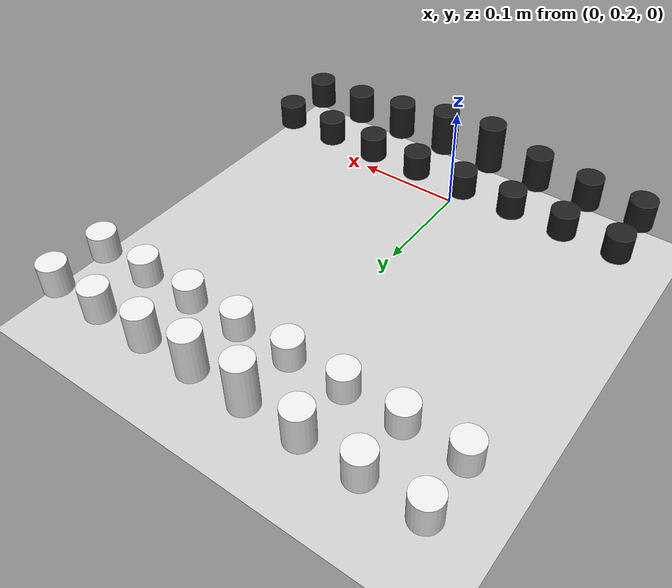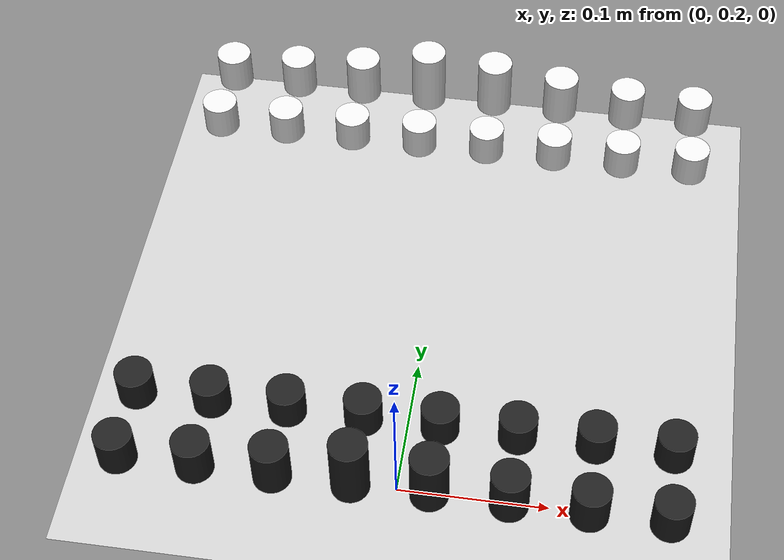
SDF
<sdf version="1.7">
 <world name="chessRoom">
  <include><uri>model://ground_plane</uri></include>
  <include><uri>model://sun</uri></include>
  <include><uri>model://pawnBlack</uri><name>blackPawn1</name><pose>0.175 0.225 0.0515 0 0 0</pose></include>
  <include><uri>model://pawnBlack</uri><name>blackPawn2</name><pose>0.125 0.225 0.0515 0 0 0</pose></include>
  <include><uri>model://pawnBlack</uri><name>blackPawn3</name><pose>0.075 0.225 0.0515 0 0 0</pose></include>
  <include><uri>model://pawnBlack</uri><name>blackPawn4</name><pose>0.025 0.225 0.0515 0 0 0</pose></include>
  <include><uri>model://pawnBlack</uri><name>blackPawn5</name><pose>-0.025 0.225 0.0515 0 0 0</pose></include>
  <include><uri>model://pawnBlack</uri><name>blackPawn6</name><pose>-0.075 0.225 0.0515 0 0 0</pose></include>
  <include><uri>model://pawnBlack</uri><name>blackPawn7</name><pose>-0.125 0.225 0.0515 0 0 0</pose></include>
  <include><uri>model://pawnBlack</uri><name>blackPawn8</name><pose>-0.175 0.225 0.0515 0 0 0</pose></include>
  <include><uri>model://rookBlack</uri><name>blackRook1</name><pose>0.175 0.175 0.05275 0 0 0</pose></include>
  <include><uri>model://rookBlack</uri><name>blackRook2</name><pose>-0.175 0.175 0.05275 0 0 0</pose></include>
  <include><uri>model://knightBlack</uri><name>blackKnight1</name><pose>0.125 0.175 0.054 0 0 0</pose></include>
  <include>
   <uri>model://knightBlack</uri>
   <name>blackKnight2</name>
   <pose>-0.125 0.175 0.054 0 0 0</pose>
  </include>
  <include>
   <uri>model://bishopBlack</uri>
   <name>blackBishop1</name>
   <pose>0.075 0.175 0.0565 0 0 0</pose>
  </include>
  <include>
   <uri>model://bishopBlack</uri>
   <name>blackBishop2</name>
   <pose>-0.075 0.175 0.0565 0 0 0</pose>
  </include>
  <include><uri>model://queenBlack</uri><name>blackQueen</name><pose>0.025 0.175 0.06109 0 0 0</pose></include>
  <include><uri>model://kingBlack</uri><name>blackKing</name><pose>-0.025 0.175 0.0628 0 0 0</pose></include>
  <include><uri>model://pawnWhite</uri><name>whitePawn1</name><pose>0.175 0.475 0.0515 0 0 0</pose></include>
  <include><uri>model://pawnWhite</uri><name>whitePawn2</name><pose>0.125 0.475 0.0515 0 0 0</pose></include>
  <include><uri>model://pawnWhite</uri><name>whitePawn3</name><pose>0.075 0.475 0.0515 0 0 0</pose></include>
  <include><uri>model://pawnWhite</uri><name>whitePawn4</name><pose>0.025 0.475 0.0515 0 0 0</pose></include>
  <include><uri>model://pawnWhite</uri><name>whitePawn5</name><pose>-0.025 0.475 0.0515 0 0 0</pose></include>
  <include><uri>model://pawnWhite</uri><name>whitePawn6</name><pose>-0.075 0.475 0.0515 0 0 0</pose></include>
  <include><uri>model://pawnWhite</uri><name>whitePawn7</name><pose>-0.125 0.475 0.0515 0 0 0</pose></include>
  <include><uri>model://pawnWhite</uri><name>whitePawn8</name><pose>-0.175 0.475 0.0515 0 0 0</pose></include>
  <include><uri>model://rookWhite</uri><name>whiteRook1</name><pose>0.175 0.525 0.05275 0 0 0</pose></include>
  <include><uri>model://rookWhite</uri><name>whiteRook2</name><pose>-0.175 0.525 0.05275 0 0 0</pose></include>
  <include><uri>model://knightWhite</uri><name>whiteKnight1</name><pose>0.125 0.525 0.054 0 0 0</pose></include>
  <include>
   <uri>model://knightWhite</uri>
   <name>whiteKnight2</name>
   <pose>-0.125 0.525 0.054 0 0 0</pose>
  </include>
  <include>
   <uri>model://bishopWhite</uri>
   <name>whiteBishop1</name>
   <pose>0.075 0.525 0.0565 0 0 0</pose>
  </include>
  <include>
   <uri>model://bishopWhite</uri>
   <name>whiteBishop2</name>
   <pose>-0.075 0.525 0.0565 0 0 0</pose>
  </include>
  <include><uri>model://queenWhite</uri><name>whiteQueen</name><pose>0.025 0.525 0.06109 0 0 0</pose></include>
  <include><uri>model://kingWhite</uri><name>whiteKing</name><pose>-0.025 0.525 0.0628 0 0 0</pose></include>
 </world>
</sdf>

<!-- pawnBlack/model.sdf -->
<sdf version='1.6'>
  <model name='PawnBlack'>
    <link name='pawnBlack_link'>
      <pose frame=''>0 0 0 0 0 0</pose>
      <inertial>
        <mass>0.001</mass>
        <inertia>
          <ixx>3.91e-06</ixx>
          <ixy>0</ixy>
          <ixz>0</ixz>
          <iyy>3.91e-06</iyy>
          <iyz>0</iyz>
          <izz>3.91e-06</izz>
        </inertia>
        <pose frame=''>0 0 0 0 -0 0</pose>
      </inertial>
      <gravity>1</gravity>
      <self_collide>0</self_collide>
      <kinematic>0</kinematic>
      <enable_wind>0</enable_wind>
      <visual name='visual'>
        <pose frame=''>0 0 0 0 -0 0</pose>
        <geometry>
          <cylinder>
            <radius>0.0125</radius>
            <length>0.025</length>
          </cylinder>
        </geometry>
        <material>
          <lighting>1</lighting>
          <script>
            <uri>file://media/materials/scripts/gazebo.material</uri>
            <name>Gazebo/Black</name>
          </script>
          <shader type='pixel'>
            <normal_map>__default__</normal_map>
          </shader>
          <ambient>0 0 0 1</ambient>
          <diffuse>0 0 0 1</diffuse>
          <specular>0.1 0.1 0.1 1</specular>
          <emissive>0 0 0 1</emissive>
        </material>
        <cast_shadows>1</cast_shadows>
        <transparency>0</transparency>
      </visual>
      <collision name='collision'>
        <laser_retro>0</laser_retro>
        <max_contacts>10</max_contacts>
        <pose frame=''>0 0 0 0 -0 0</pose>
        <geometry>
          <cylinder>
            <radius>0.0125</radius>
            <length>0.025</length>
          </cylinder>
        </geometry>
        <surface>
          <friction>
            <ode>
              <mu>1</mu>
              <mu2>1</mu2>
              <fdir1>0 0 0</fdir1>
              <slip1>0</slip1>
              <slip2>0</slip2>
            </ode>
            <torsional>
              <coefficient>1</coefficient>
              <patch_radius>0</patch_radius>
              <surface_radius>0</surface_radius>
              <use_patch_radius>1</use_patch_radius>
              <ode>
                <slip>0</slip>
              </ode>
            </torsional>
          </friction>
          <bounce>
            <restitution_coefficient>0</restitution_coefficient>
            <threshold>1e+06</threshold>
          </bounce>
          <contact>
            <collide_without_contact>0</collide_without_contact>
            <collide_without_contact_bitmask>1</collide_without_contact_bitmask>
            <collide_bitmask>1</collide_bitmask>
            <ode>
              <soft_cfm>0</soft_cfm>
              <soft_erp>0.2</soft_erp>
              <kp>1e+13</kp>
              <kd>1</kd>
              <max_vel>0.01</max_vel>
              <min_depth>0</min_depth>
            </ode>
            <bullet>
              <split_impulse>1</split_impulse>
              <split_impulse_penetration_threshold>-0.01</split_impulse_penetration_threshold>
              <soft_cfm>0</soft_cfm>
              <soft_erp>0.2</soft_erp>
              <kp>1e+13</kp>
              <kd>1</kd>
            </bullet>
          </contact>
        </surface>
      </collision>
    </link>
    <static>0</static>
    <allow_auto_disable>1</allow_auto_disable>
  </model>
</sdf>

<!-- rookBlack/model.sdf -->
<sdf version='1.6'>
  <model name='RookBlack'>
    <link name='rookBlack_link'>
      <pose frame=''>0 0 0 0 0 0</pose>
      <inertial>
        <mass>0.001</mass>
        <inertia>
          <ixx>3.91e-06</ixx>
          <ixy>0</ixy>
          <ixz>0</ixz>
          <iyy>3.91e-06</iyy>
          <iyz>0</iyz>
          <izz>3.91e-06</izz>
        </inertia>
        <pose frame=''>0 0 0 0 -0 0</pose>
      </inertial>
      <gravity>1</gravity>
      <self_collide>0</self_collide>
      <kinematic>0</kinematic>
      <enable_wind>0</enable_wind>
      <visual name='visual'>
        <pose frame=''>0 0 0 0 -0 0</pose>
        <geometry>
          <cylinder>
            <radius>0.0125</radius>
            <length>0.0275</length>
          </cylinder>
        </geometry>
        <material>
          <lighting>1</lighting>
          <script>
            <uri>file://media/materials/scripts/gazebo.material</uri>
            <name>Gazebo/Black</name>
          </script>
          <shader type='pixel'>
            <normal_map>__default__</normal_map>
          </shader>
          <ambient>0 0 0 1</ambient>
          <diffuse>0 0 0 1</diffuse>
          <specular>0.1 0.1 0.1 1</specular>
          <emissive>0 0 0 1</emissive>
        </material>
        <cast_shadows>1</cast_shadows>
        <transparency>0</transparency>
      </visual>
      <collision name='collision'>
        <laser_retro>0</laser_retro>
        <max_contacts>10</max_contacts>
        <pose frame=''>0 0 0 0 -0 0</pose>
        <geometry>
          <cylinder>
            <radius>0.0125</radius>
            <length>0.0275</length>
          </cylinder>
        </geometry>
        <surface>
          <friction>
            <ode>
              <mu>1</mu>
              <mu2>1</mu2>
              <fdir1>0 0 0</fdir1>
              <slip1>0</slip1>
              <slip2>0</slip2>
            </ode>
            <torsional>
              <coefficient>1</coefficient>
              <patch_radius>0</patch_radius>
              <surface_radius>0</surface_radius>
              <use_patch_radius>1</use_patch_radius>
              <ode>
                <slip>0</slip>
              </ode>
            </torsional>
          </friction>
          <bounce>
            <restitution_coefficient>0</restitution_coefficient>
            <threshold>1e+06</threshold>
          </bounce>
          <contact>
            <collide_without_contact>0</collide_without_contact>
            <collide_without_contact_bitmask>1</collide_without_contact_bitmask>
            <collide_bitmask>1</collide_bitmask>
            <ode>
              <soft_cfm>0</soft_cfm>
              <soft_erp>0.2</soft_erp>
              <kp>1e+13</kp>
              <kd>1</kd>
              <max_vel>0.01</max_vel>
              <min_depth>0</min_depth>
            </ode>
            <bullet>
              <split_impulse>1</split_impulse>
              <split_impulse_penetration_threshold>-0.01</split_impulse_penetration_threshold>
              <soft_cfm>0</soft_cfm>
              <soft_erp>0.2</soft_erp>
              <kp>1e+13</kp>
              <kd>1</kd>
            </bullet>
          </contact>
        </surface>
      </collision>
    </link>
    <static>0</static>
    <allow_auto_disable>1</allow_auto_disable>
  </model>
</sdf>

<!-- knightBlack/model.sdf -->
<sdf version='1.6'>
  <model name='KnightBlack'>
    <link name='knightBlack_link'>
      <pose frame=''>0 0 0 0 0 0</pose>
      <inertial>
        <mass>0.001</mass>
        <inertia>
          <ixx>3.91e-06</ixx>
          <ixy>0</ixy>
          <ixz>0</ixz>
          <iyy>3.91e-06</iyy>
          <iyz>0</iyz>
          <izz>3.91e-06</izz>
        </inertia>
        <pose frame=''>0 0 0 0 -0 0</pose>
      </inertial>
      <gravity>1</gravity>
      <self_collide>0</self_collide>
      <kinematic>0</kinematic>
      <enable_wind>0</enable_wind>
      <visual name='visual'>
        <pose frame=''>0 0 0 0 -0 0</pose>
        <geometry>
          <cylinder>
            <radius>0.0125</radius>
            <length>0.03</length>
          </cylinder>
        </geometry>
        <material>
          <lighting>1</lighting>
          <script>
            <uri>file://media/materials/scripts/gazebo.material</uri>
            <name>Gazebo/Black</name>
          </script>
          <shader type='pixel'>
            <normal_map>__default__</normal_map>
          </shader>
          <ambient>0 0 0 1</ambient>
          <diffuse>0 0 0 1</diffuse>
          <specular>0.1 0.1 0.1 1</specular>
          <emissive>0 0 0 1</emissive>
        </material>
        <cast_shadows>1</cast_shadows>
        <transparency>0</transparency>
      </visual>
      <collision name='collision'>
        <laser_retro>0</laser_retro>
        <max_contacts>10</max_contacts>
        <pose frame=''>0 0 0 0 -0 0</pose>
        <geometry>
          <cylinder>
            <radius>0.0125</radius>
            <length>0.03</length>
          </cylinder>
        </geometry>
        <surface>
          <friction>
            <ode>
              <mu>1</mu>
              <mu2>1</mu2>
              <fdir1>0 0 0</fdir1>
              <slip1>0</slip1>
              <slip2>0</slip2>
            </ode>
            <torsional>
              <coefficient>1</coefficient>
              <patch_radius>0</patch_radius>
              <surface_radius>0</surface_radius>
              <use_patch_radius>1</use_patch_radius>
              <ode>
                <slip>0</slip>
              </ode>
            </torsional>
          </friction>
          <bounce>
            <restitution_coefficient>0</restitution_coefficient>
            <threshold>1e+06</threshold>
          </bounce>
          <contact>
            <collide_without_contact>0</collide_without_contact>
            <collide_without_contact_bitmask>1</collide_without_contact_bitmask>
            <collide_bitmask>1</collide_bitmask>
            <ode>
              <soft_cfm>0</soft_cfm>
              <soft_erp>0.2</soft_erp>
              <kp>1e+13</kp>
              <kd>1</kd>
              <max_vel>0.01</max_vel>
              <min_depth>0</min_depth>
            </ode>
            <bullet>
              <split_impulse>1</split_impulse>
              <split_impulse_penetration_threshold>-0.01</split_impulse_penetration_threshold>
              <soft_cfm>0</soft_cfm>
              <soft_erp>0.2</soft_erp>
              <kp>1e+13</kp>
              <kd>1</kd>
            </bullet>
          </contact>
        </surface>
      </collision>
    </link>
    <static>0</static>
    <allow_auto_disable>1</allow_auto_disable>
  </model>
</sdf>

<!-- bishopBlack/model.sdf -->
<sdf version='1.6'>
  <model name='BishopBlack'>
    <link name='bishopBlack_link'>
      <pose frame=''>0 0 0 0 0 0</pose>
      <inertial>
        <mass>0.001</mass>
        <inertia>
          <ixx>3.91e-06</ixx>
          <ixy>0</ixy>
          <ixz>0</ixz>
          <iyy>3.91e-06</iyy>
          <iyz>0</iyz>
          <izz>3.91e-06</izz>
        </inertia>
        <pose frame=''>0 0 0 0 -0 0</pose>
      </inertial>
      <gravity>1</gravity>
      <self_collide>0</self_collide>
      <kinematic>0</kinematic>
      <enable_wind>0</enable_wind>
      <visual name='visual'>
        <pose frame=''>0 0 0 0 -0 0</pose>
        <geometry>
          <cylinder>
            <radius>0.0125</radius>
            <length>0.035</length>
          </cylinder>
        </geometry>
        <material>
          <lighting>1</lighting>
          <script>
            <uri>file://media/materials/scripts/gazebo.material</uri>
            <name>Gazebo/Black</name>
          </script>
          <shader type='pixel'>
            <normal_map>__default__</normal_map>
          </shader>
          <ambient>0 0 0 1</ambient>
          <diffuse>0 0 0 1</diffuse>
          <specular>0.1 0.1 0.1 1</specular>
          <emissive>0 0 0 1</emissive>
        </material>
        <cast_shadows>1</cast_shadows>
        <transparency>0</transparency>
      </visual>
      <collision name='collision'>
        <laser_retro>0</laser_retro>
        <max_contacts>10</max_contacts>
        <pose frame=''>0 0 0 0 -0 0</pose>
        <geometry>
          <cylinder>
            <radius>0.0125</radius>
            <length>0.035</length>
          </cylinder>
        </geometry>
        <surface>
          <friction>
            <ode>
              <mu>1</mu>
              <mu2>1</mu2>
              <fdir1>0 0 0</fdir1>
              <slip1>0</slip1>
              <slip2>0</slip2>
            </ode>
            <torsional>
              <coefficient>1</coefficient>
              <patch_radius>0</patch_radius>
              <surface_radius>0</surface_radius>
              <use_patch_radius>1</use_patch_radius>
              <ode>
                <slip>0</slip>
              </ode>
            </torsional>
          </friction>
          <bounce>
            <restitution_coefficient>0</restitution_coefficient>
            <threshold>1e+06</threshold>
          </bounce>
          <contact>
            <collide_without_contact>0</collide_without_contact>
            <collide_without_contact_bitmask>1</collide_without_contact_bitmask>
            <collide_bitmask>1</collide_bitmask>
            <ode>
              <soft_cfm>0</soft_cfm>
              <soft_erp>0.2</soft_erp>
              <kp>1e+13</kp>
              <kd>1</kd>
              <max_vel>0.01</max_vel>
              <min_depth>0</min_depth>
            </ode>
            <bullet>
              <split_impulse>1</split_impulse>
              <split_impulse_penetration_threshold>-0.01</split_impulse_penetration_threshold>
              <soft_cfm>0</soft_cfm>
              <soft_erp>0.2</soft_erp>
              <kp>1e+13</kp>
              <kd>1</kd>
            </bullet>
          </contact>
        </surface>
      </collision>
    </link>
    <static>0</static>
    <allow_auto_disable>1</allow_auto_disable>
  </model>
</sdf>

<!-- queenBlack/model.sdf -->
<sdf version='1.6'>
  <model name='QueenBlack'>
    <link name='queenBlack_link'>
      <pose frame=''>0 0 0 0 0 0</pose>
      <inertial>
        <mass>0.001</mass>
        <inertia>
          <ixx>3.91e-06</ixx>
          <ixy>0</ixy>
          <ixz>0</ixz>
          <iyy>3.91e-06</iyy>
          <iyz>0</iyz>
          <izz>3.91e-06</izz>
        </inertia>
        <pose frame=''>0 0 0 0 -0 0</pose>
      </inertial>
      <gravity>1</gravity>
      <self_collide>0</self_collide>
      <kinematic>0</kinematic>
      <enable_wind>0</enable_wind>
      <visual name='visual'>
        <pose frame=''>0 0 0 0 -0 0</pose>
        <geometry>
          <cylinder>
            <radius>0.0125</radius>
            <length>0.0425</length>
          </cylinder>
        </geometry>
        <material>
          <lighting>1</lighting>
          <script>
            <uri>file://media/materials/scripts/gazebo.material</uri>
            <name>Gazebo/Black</name>
          </script>
          <shader type='pixel'>
            <normal_map>__default__</normal_map>
          </shader>
          <ambient>0 0 0 1</ambient>
          <diffuse>0 0 0 1</diffuse>
          <specular>0.1 0.1 0.1 1</specular>
          <emissive>0 0 0 1</emissive>
        </material>
        <cast_shadows>1</cast_shadows>
        <transparency>0</transparency>
      </visual>
      <collision name='collision'>
        <laser_retro>0</laser_retro>
        <max_contacts>10</max_contacts>
        <pose frame=''>0 0 0 0 -0 0</pose>
        <geometry>
          <cylinder>
            <radius>0.0125</radius>
            <length>0.0425</length>
          </cylinder>
        </geometry>
        <surface>
          <friction>
            <ode>
              <mu>1</mu>
              <mu2>1</mu2>
              <fdir1>0 0 0</fdir1>
              <slip1>0</slip1>
              <slip2>0</slip2>
            </ode>
            <torsional>
              <coefficient>1</coefficient>
              <patch_radius>0</patch_radius>
              <surface_radius>0</surface_radius>
              <use_patch_radius>1</use_patch_radius>
              <ode>
                <slip>0</slip>
              </ode>
            </torsional>
          </friction>
          <bounce>
            <restitution_coefficient>0</restitution_coefficient>
            <threshold>1e+06</threshold>
          </bounce>
          <contact>
            <collide_without_contact>0</collide_without_contact>
            <collide_without_contact_bitmask>1</collide_without_contact_bitmask>
            <collide_bitmask>1</collide_bitmask>
            <ode>
              <soft_cfm>0</soft_cfm>
              <soft_erp>0.2</soft_erp>
              <kp>1e+13</kp>
              <kd>1</kd>
              <max_vel>0.01</max_vel>
              <min_depth>0</min_depth>
            </ode>
            <bullet>
              <split_impulse>1</split_impulse>
              <split_impulse_penetration_threshold>-0.01</split_impulse_penetration_threshold>
              <soft_cfm>0</soft_cfm>
              <soft_erp>0.2</soft_erp>
              <kp>1e+13</kp>
              <kd>1</kd>
            </bullet>
          </contact>
        </surface>
      </collision>
    </link>
    <static>0</static>
    <allow_auto_disable>1</allow_auto_disable>
  </model>
</sdf>

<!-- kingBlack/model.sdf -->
<sdf version='1.6'>
  <model name='KingBlack'>
    <link name='kingBlack_link'>
      <pose frame=''>0 0 0 0 0 0</pose>
      <inertial>
        <mass>0.001</mass>
        <inertia>
          <ixx>3.91e-06</ixx>
          <ixy>0</ixy>
          <ixz>0</ixz>
          <iyy>3.91e-06</iyy>
          <iyz>0</iyz>
          <izz>3.91e-06</izz>
        </inertia>
        <pose frame=''>0 0 0 0 -0 0</pose>
      </inertial>
      <gravity>1</gravity>
      <self_collide>0</self_collide>
      <kinematic>0</kinematic>
      <enable_wind>0</enable_wind>
      <visual name='visual'>
        <pose frame=''>0 0 0 0 -0 0</pose>
        <geometry>
          <cylinder>
            <radius>0.0125</radius>
            <length>0.0475</length>
          </cylinder>
        </geometry>
        <material>
          <lighting>1</lighting>
          <script>
            <uri>file://media/materials/scripts/gazebo.material</uri>
            <name>Gazebo/Black</name>
          </script>
          <shader type='pixel'>
            <normal_map>__default__</normal_map>
          </shader>
          <ambient>0 0 0 1</ambient>
          <diffuse>0 0 0 1</diffuse>
          <specular>0.1 0.1 0.1 1</specular>
          <emissive>0 0 0 1</emissive>
        </material>
        <cast_shadows>1</cast_shadows>
        <transparency>0</transparency>
      </visual>
      <collision name='collision'>
        <laser_retro>0</laser_retro>
        <max_contacts>10</max_contacts>
        <pose frame=''>0 0 0 0 -0 0</pose>
        <geometry>
          <cylinder>
            <radius>0.0125</radius>
            <length>0.0475</length>
          </cylinder>
        </geometry>
        <surface>
          <friction>
            <ode>
              <mu>1</mu>
              <mu2>1</mu2>
              <fdir1>0 0 0</fdir1>
              <slip1>0</slip1>
              <slip2>0</slip2>
            </ode>
            <torsional>
              <coefficient>1</coefficient>
              <patch_radius>0</patch_radius>
              <surface_radius>0</surface_radius>
              <use_patch_radius>1</use_patch_radius>
              <ode>
                <slip>0</slip>
              </ode>
            </torsional>
          </friction>
          <bounce>
            <restitution_coefficient>0</restitution_coefficient>
            <threshold>1e+06</threshold>
          </bounce>
          <contact>
            <collide_without_contact>0</collide_without_contact>
            <collide_without_contact_bitmask>1</collide_without_contact_bitmask>
            <collide_bitmask>1</collide_bitmask>
            <ode>
              <soft_cfm>0</soft_cfm>
              <soft_erp>0.2</soft_erp>
              <kp>1e+13</kp>
              <kd>1</kd>
              <max_vel>0.01</max_vel>
              <min_depth>0</min_depth>
            </ode>
            <bullet>
              <split_impulse>1</split_impulse>
              <split_impulse_penetration_threshold>-0.01</split_impulse_penetration_threshold>
              <soft_cfm>0</soft_cfm>
              <soft_erp>0.2</soft_erp>
              <kp>1e+13</kp>
              <kd>1</kd>
            </bullet>
          </contact>
        </surface>
      </collision>
    </link>
    <static>0</static>
    <allow_auto_disable>1</allow_auto_disable>
  </model>
</sdf>

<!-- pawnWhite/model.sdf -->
<sdf version='1.7'>
  <model name='PawnWhite'>
    <link name='pawnWhite_link'>
      <inertial>
        <mass>0.001</mass>
        <inertia>
          <ixx>3.91e-06</ixx>
          <ixy>0</ixy>
          <ixz>0</ixz>
          <iyy>3.91e-06</iyy>
          <iyz>0</iyz>
          <izz>3.91e-06</izz>
        </inertia>
        <pose>0 0 0 0 -0 0</pose>
      </inertial>
      <pose>0 0 0 0 -0 0</pose>
      <gravity>1</gravity>
      <self_collide>0</self_collide>
      <kinematic>0</kinematic>
      <enable_wind>0</enable_wind>
      <visual name='visual'>
        <pose>0 0 0 0 -0 0</pose>
        <geometry>
          <cylinder>
            <radius>0.0125</radius>
            <length>0.025</length>
          </cylinder>
        </geometry>
        <material>
          <lighting>1</lighting>
          <script>
            <uri>file://media/materials/scripts/gazebo.material</uri>
            <name>Gazebo/White</name>
          </script>
          <shader type='pixel'>
            <normal_map>__default__</normal_map>
          </shader>
          <ambient>1 1 1 1</ambient>
          <diffuse>1 1 1 1</diffuse>
          <specular>0 0 0 1</specular>
          <emissive>0 0 0 1</emissive>
        </material>
        <transparency>0</transparency>
        <cast_shadows>1</cast_shadows>
      </visual>
      <collision name='collision'>
        <laser_retro>0</laser_retro>
        <max_contacts>10</max_contacts>
        <pose>0 0 0 0 -0 0</pose>
        <geometry>
          <cylinder>
            <radius>0.0125</radius>
            <length>0.025</length>
          </cylinder>
        </geometry>
        <surface>
          <friction>
            <ode>
              <mu>1</mu>
              <mu2>1</mu2>
              <fdir1>0 0 0</fdir1>
              <slip1>0</slip1>
              <slip2>0</slip2>
            </ode>
            <torsional>
              <coefficient>1</coefficient>
              <patch_radius>0</patch_radius>
              <surface_radius>0</surface_radius>
              <use_patch_radius>1</use_patch_radius>
              <ode>
                <slip>0</slip>
              </ode>
            </torsional>
          </friction>
          <bounce>
            <restitution_coefficient>0</restitution_coefficient>
            <threshold>1e+06</threshold>
          </bounce>
          <contact>
            <collide_without_contact>0</collide_without_contact>
            <collide_without_contact_bitmask>1</collide_without_contact_bitmask>
            <collide_bitmask>1</collide_bitmask>
            <ode>
              <soft_cfm>0</soft_cfm>
              <soft_erp>0.2</soft_erp>
              <kp>1e+13</kp>
              <kd>1</kd>
              <max_vel>0.01</max_vel>
              <min_depth>0</min_depth>
            </ode>
            <bullet>
              <split_impulse>1</split_impulse>
              <split_impulse_penetration_threshold>-0.01</split_impulse_penetration_threshold>
              <soft_cfm>0</soft_cfm>
              <soft_erp>0.2</soft_erp>
              <kp>1e+13</kp>
              <kd>1</kd>
            </bullet>
          </contact>
        </surface>
      </collision>
    </link>
    <static>0</static>
    <allow_auto_disable>1</allow_auto_disable>
  </model>
</sdf>

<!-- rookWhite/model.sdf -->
<sdf version='1.7'>
  <model name='RookWhite'>
    <link name='rookWhite_link'>
      <inertial>
        <mass>0.001</mass>
        <inertia>
          <ixx>3.91e-06</ixx>
          <ixy>0</ixy>
          <ixz>0</ixz>
          <iyy>3.91e-06</iyy>
          <iyz>0</iyz>
          <izz>3.91e-06</izz>
        </inertia>
        <pose>0 0 0 0 -0 0</pose>
      </inertial>
      <pose>0 0 0 0 -0 0</pose>
      <gravity>1</gravity>
      <self_collide>0</self_collide>
      <kinematic>0</kinematic>
      <enable_wind>0</enable_wind>
      <visual name='visual'>
        <pose>0 0 0 0 -0 0</pose>
        <geometry>
          <cylinder>
            <radius>0.0125</radius>
            <length>0.0275</length>
          </cylinder>
        </geometry>
        <material>
          <lighting>1</lighting>
          <script>
            <uri>file://media/materials/scripts/gazebo.material</uri>
            <name>Gazebo/White</name>
          </script>
          <shader type='pixel'>
            <normal_map>__default__</normal_map>
          </shader>
          <ambient>1 1 1 1</ambient>
          <diffuse>1 1 1 1</diffuse>
          <specular>0 0 0 1</specular>
          <emissive>0 0 0 1</emissive>
        </material>
        <transparency>0</transparency>
        <cast_shadows>1</cast_shadows>
      </visual>
      <collision name='collision'>
        <laser_retro>0</laser_retro>
        <max_contacts>10</max_contacts>
        <pose>0 0 0 0 -0 0</pose>
        <geometry>
          <cylinder>
            <radius>0.0125</radius>
            <length>0.0275</length>
          </cylinder>
        </geometry>
        <surface>
          <friction>
            <ode>
              <mu>1</mu>
              <mu2>1</mu2>
              <fdir1>0 0 0</fdir1>
              <slip1>0</slip1>
              <slip2>0</slip2>
            </ode>
            <torsional>
              <coefficient>1</coefficient>
              <patch_radius>0</patch_radius>
              <surface_radius>0</surface_radius>
              <use_patch_radius>1</use_patch_radius>
              <ode>
                <slip>0</slip>
              </ode>
            </torsional>
          </friction>
          <bounce>
            <restitution_coefficient>0</restitution_coefficient>
            <threshold>1e+06</threshold>
          </bounce>
          <contact>
            <collide_without_contact>0</collide_without_contact>
            <collide_without_contact_bitmask>1</collide_without_contact_bitmask>
            <collide_bitmask>1</collide_bitmask>
            <ode>
              <soft_cfm>0</soft_cfm>
              <soft_erp>0.2</soft_erp>
              <kp>1e+13</kp>
              <kd>1</kd>
              <max_vel>0.01</max_vel>
              <min_depth>0</min_depth>
            </ode>
            <bullet>
              <split_impulse>1</split_impulse>
              <split_impulse_penetration_threshold>-0.01</split_impulse_penetration_threshold>
              <soft_cfm>0</soft_cfm>
              <soft_erp>0.2</soft_erp>
              <kp>1e+13</kp>
              <kd>1</kd>
            </bullet>
          </contact>
        </surface>
      </collision>
    </link>
    <static>0</static>
    <allow_auto_disable>1</allow_auto_disable>
  </model>
</sdf>

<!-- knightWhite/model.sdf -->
<sdf version='1.7'>
  <model name='KnightWhite'>
    <link name='knightWhite_link'>
      <inertial>
        <mass>0.001</mass>
        <inertia>
          <ixx>3.91e-06</ixx>
          <ixy>0</ixy>
          <ixz>0</ixz>
          <iyy>3.91e-06</iyy>
          <iyz>0</iyz>
          <izz>3.91e-06</izz>
        </inertia>
        <pose>0 0 0 0 -0 0</pose>
      </inertial>
      <pose>0 0 0 0 -0 0</pose>
      <gravity>1</gravity>
      <self_collide>0</self_collide>
      <kinematic>0</kinematic>
      <enable_wind>0</enable_wind>
      <visual name='visual'>
        <pose>0 0 0 0 -0 0</pose>
        <geometry>
          <cylinder>
            <radius>0.0125</radius>
            <length>0.03</length>
          </cylinder>
        </geometry>
        <material>
          <lighting>1</lighting>
          <script>
            <uri>file://media/materials/scripts/gazebo.material</uri>
            <name>Gazebo/White</name>
          </script>
          <shader type='pixel'>
            <normal_map>__default__</normal_map>
          </shader>
          <ambient>1 1 1 1</ambient>
          <diffuse>1 1 1 1</diffuse>
          <specular>0 0 0 1</specular>
          <emissive>0 0 0 1</emissive>
        </material>
        <transparency>0</transparency>
        <cast_shadows>1</cast_shadows>
      </visual>
      <collision name='collision'>
        <laser_retro>0</laser_retro>
        <max_contacts>10</max_contacts>
        <pose>0 0 0 0 -0 0</pose>
        <geometry>
          <cylinder>
            <radius>0.0125</radius>
            <length>0.03</length>
          </cylinder>
        </geometry>
        <surface>
          <friction>
            <ode>
              <mu>1</mu>
              <mu2>1</mu2>
              <fdir1>0 0 0</fdir1>
              <slip1>0</slip1>
              <slip2>0</slip2>
            </ode>
            <torsional>
              <coefficient>1</coefficient>
              <patch_radius>0</patch_radius>
              <surface_radius>0</surface_radius>
              <use_patch_radius>1</use_patch_radius>
              <ode>
                <slip>0</slip>
              </ode>
            </torsional>
          </friction>
          <bounce>
            <restitution_coefficient>0</restitution_coefficient>
            <threshold>1e+06</threshold>
          </bounce>
          <contact>
            <collide_without_contact>0</collide_without_contact>
            <collide_without_contact_bitmask>1</collide_without_contact_bitmask>
            <collide_bitmask>1</collide_bitmask>
            <ode>
              <soft_cfm>0</soft_cfm>
              <soft_erp>0.2</soft_erp>
              <kp>1e+13</kp>
              <kd>1</kd>
              <max_vel>0.01</max_vel>
              <min_depth>0</min_depth>
            </ode>
            <bullet>
              <split_impulse>1</split_impulse>
              <split_impulse_penetration_threshold>-0.01</split_impulse_penetration_threshold>
              <soft_cfm>0</soft_cfm>
              <soft_erp>0.2</soft_erp>
              <kp>1e+13</kp>
              <kd>1</kd>
            </bullet>
          </contact>
        </surface>
      </collision>
    </link>
    <static>0</static>
    <allow_auto_disable>1</allow_auto_disable>
  </model>
</sdf>

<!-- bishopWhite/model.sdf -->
<sdf version='1.7'>
  <model name='BishopWhite'>
    <link name='bishopWhite_link'>
      <inertial>
        <mass>0.001</mass>
        <inertia>
          <ixx>3.91e-06</ixx>
          <ixy>0</ixy>
          <ixz>0</ixz>
          <iyy>3.91e-06</iyy>
          <iyz>0</iyz>
          <izz>3.91e-06</izz>
        </inertia>
        <pose>0 0 0 0 -0 0</pose>
      </inertial>
      <pose>0 0 0 0 -0 0</pose>
      <gravity>1</gravity>
      <self_collide>0</self_collide>
      <kinematic>0</kinematic>
      <enable_wind>0</enable_wind>
      <visual name='visual'>
        <pose>0 0 0 0 -0 0</pose>
        <geometry>
          <cylinder>
            <radius>0.0125</radius>
            <length>0.035</length>
          </cylinder>
        </geometry>
        <material>
          <lighting>1</lighting>
          <script>
            <uri>file://media/materials/scripts/gazebo.material</uri>
            <name>Gazebo/White</name>
          </script>
          <shader type='pixel'>
            <normal_map>__default__</normal_map>
          </shader>
          <ambient>1 1 1 1</ambient>
          <diffuse>1 1 1 1</diffuse>
          <specular>0 0 0 1</specular>
          <emissive>0 0 0 1</emissive>
        </material>
        <transparency>0</transparency>
        <cast_shadows>1</cast_shadows>
      </visual>
      <collision name='collision'>
        <laser_retro>0</laser_retro>
        <max_contacts>10</max_contacts>
        <pose>0 0 0 0 -0 0</pose>
        <geometry>
          <cylinder>
            <radius>0.0125</radius>
            <length>0.035</length>
          </cylinder>
        </geometry>
        <surface>
          <friction>
            <ode>
              <mu>1</mu>
              <mu2>1</mu2>
              <fdir1>0 0 0</fdir1>
              <slip1>0</slip1>
              <slip2>0</slip2>
            </ode>
            <torsional>
              <coefficient>1</coefficient>
              <patch_radius>0</patch_radius>
              <surface_radius>0</surface_radius>
              <use_patch_radius>1</use_patch_radius>
              <ode>
                <slip>0</slip>
              </ode>
            </torsional>
          </friction>
          <bounce>
            <restitution_coefficient>0</restitution_coefficient>
            <threshold>1e+06</threshold>
          </bounce>
          <contact>
            <collide_without_contact>0</collide_without_contact>
            <collide_without_contact_bitmask>1</collide_without_contact_bitmask>
            <collide_bitmask>1</collide_bitmask>
            <ode>
              <soft_cfm>0</soft_cfm>
              <soft_erp>0.2</soft_erp>
              <kp>1e+13</kp>
              <kd>1</kd>
              <max_vel>0.01</max_vel>
              <min_depth>0</min_depth>
            </ode>
            <bullet>
              <split_impulse>1</split_impulse>
              <split_impulse_penetration_threshold>-0.01</split_impulse_penetration_threshold>
              <soft_cfm>0</soft_cfm>
              <soft_erp>0.2</soft_erp>
              <kp>1e+13</kp>
              <kd>1</kd>
            </bullet>
          </contact>
        </surface>
      </collision>
    </link>
    <static>0</static>
    <allow_auto_disable>1</allow_auto_disable>
  </model>
</sdf>

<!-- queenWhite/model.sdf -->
<sdf version='1.7'>
  <model name='QueenWhite'>
    <link name='queenWhite_link'>
      <inertial>
       <mass>0.001</mass>
        <inertia>
          <ixx>3.91e-06</ixx>
          <ixy>0</ixy>
          <ixz>0</ixz>
          <iyy>3.91e-06</iyy>
          <iyz>0</iyz>
          <izz>3.91e-06</izz>
        </inertia>
        <pose>0 0 0 0 -0 0</pose>
      </inertial>
      <pose>0 0 0 0 -0 0</pose>
      <gravity>1</gravity>
      <self_collide>0</self_collide>
      <kinematic>0</kinematic>
      <enable_wind>0</enable_wind>
      <visual name='visual'>
        <pose>0 0 0 0 -0 0</pose>
        <geometry>
          <cylinder>
            <radius>0.0125</radius>
            <length>0.0425</length>
          </cylinder>
        </geometry>
        <material>
          <lighting>1</lighting>
          <script>
            <uri>file://media/materials/scripts/gazebo.material</uri>
            <name>Gazebo/White</name>
          </script>
          <shader type='pixel'>
            <normal_map>__default__</normal_map>
          </shader>
          <ambient>1 1 1 1</ambient>
          <diffuse>1 1 1 1</diffuse>
          <specular>0 0 0 1</specular>
          <emissive>0 0 0 1</emissive>
        </material>
        <transparency>0</transparency>
        <cast_shadows>1</cast_shadows>
      </visual>
      <collision name='collision'>
        <laser_retro>0</laser_retro>
        <max_contacts>10</max_contacts>
        <pose>0 0 0 0 -0 0</pose>
        <geometry>
          <cylinder>
            <radius>0.0125</radius>
            <length>0.0425</length>
          </cylinder>
        </geometry>
        <surface>
          <friction>
            <ode>
              <mu>1</mu>
              <mu2>1</mu2>
              <fdir1>0 0 0</fdir1>
              <slip1>0</slip1>
              <slip2>0</slip2>
            </ode>
            <torsional>
              <coefficient>1</coefficient>
              <patch_radius>0</patch_radius>
              <surface_radius>0</surface_radius>
              <use_patch_radius>1</use_patch_radius>
              <ode>
                <slip>0</slip>
              </ode>
            </torsional>
          </friction>
          <bounce>
            <restitution_coefficient>0</restitution_coefficient>
            <threshold>1e+06</threshold>
          </bounce>
          <contact>
            <collide_without_contact>0</collide_without_contact>
            <collide_without_contact_bitmask>1</collide_without_contact_bitmask>
            <collide_bitmask>1</collide_bitmask>
            <ode>
              <soft_cfm>0</soft_cfm>
              <soft_erp>0.2</soft_erp>
              <kp>1e+13</kp>
              <kd>1</kd>
              <max_vel>0.01</max_vel>
              <min_depth>0</min_depth>
            </ode>
            <bullet>
              <split_impulse>1</split_impulse>
              <split_impulse_penetration_threshold>-0.01</split_impulse_penetration_threshold>
              <soft_cfm>0</soft_cfm>
              <soft_erp>0.2</soft_erp>
              <kp>1e+13</kp>
              <kd>1</kd>
            </bullet>
          </contact>
        </surface>
      </collision>
    </link>
    <static>0</static>
    <allow_auto_disable>1</allow_auto_disable>
  </model>
</sdf>

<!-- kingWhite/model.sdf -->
<sdf version='1.7'>
  <model name='KingWhite'>
    <link name='kingWhite_link'>
      <inertial>
       <mass>0.001</mass>
        <inertia>
          <ixx>3.91e-06</ixx>
          <ixy>0</ixy>
          <ixz>0</ixz>
          <iyy>3.91e-06</iyy>
          <iyz>0</iyz>
          <izz>3.91e-06</izz>
        </inertia>
        <pose>0 0 0 0 -0 0</pose>
      </inertial>
      <pose>0 0 0 0 -0 0</pose>
      <gravity>1</gravity>
      <self_collide>0</self_collide>
      <kinematic>0</kinematic>
      <enable_wind>0</enable_wind>
      <visual name='visual'>
        <pose>0 0 0 0 -0 0</pose>
        <geometry>
          <cylinder>
            <radius>0.0125</radius>
            <length>0.0475</length>
          </cylinder>
        </geometry>
        <material>
          <lighting>1</lighting>
          <script>
            <uri>file://media/materials/scripts/gazebo.material</uri>
            <name>Gazebo/White</name>
          </script>
          <shader type='pixel'>
            <normal_map>__default__</normal_map>
          </shader>
          <ambient>1 1 1 1</ambient>
          <diffuse>1 1 1 1</diffuse>
          <specular>0 0 0 1</specular>
          <emissive>0 0 0 1</emissive>
        </material>
        <transparency>0</transparency>
        <cast_shadows>1</cast_shadows>
      </visual>
      <collision name='collision'>
        <laser_retro>0</laser_retro>
        <max_contacts>10</max_contacts>
        <pose>0 0 0 0 -0 0</pose>
        <geometry>
          <cylinder>
            <radius>0.0125</radius>
            <length>0.0475</length>
          </cylinder>
        </geometry>
        <surface>
          <friction>
            <ode>
              <mu>1</mu>
              <mu2>1</mu2>
              <fdir1>0 0 0</fdir1>
              <slip1>0</slip1>
              <slip2>0</slip2>
            </ode>
            <torsional>
              <coefficient>1</coefficient>
              <patch_radius>0</patch_radius>
              <surface_radius>0</surface_radius>
              <use_patch_radius>1</use_patch_radius>
              <ode>
                <slip>0</slip>
              </ode>
            </torsional>
          </friction>
          <bounce>
            <restitution_coefficient>0</restitution_coefficient>
            <threshold>1e+06</threshold>
          </bounce>
          <contact>
            <collide_without_contact>0</collide_without_contact>
            <collide_without_contact_bitmask>1</collide_without_contact_bitmask>
            <collide_bitmask>1</collide_bitmask>
            <ode>
              <soft_cfm>0</soft_cfm>
              <soft_erp>0.2</soft_erp>
              <kp>1e+13</kp>
              <kd>1</kd>
              <max_vel>0.01</max_vel>
              <min_depth>0</min_depth>
            </ode>
            <bullet>
              <split_impulse>1</split_impulse>
              <split_impulse_penetration_threshold>-0.01</split_impulse_penetration_threshold>
              <soft_cfm>0</soft_cfm>
              <soft_erp>0.2</soft_erp>
              <kp>1e+13</kp>
              <kd>1</kd>
            </bullet>
          </contact>
        </surface>
      </collision>
    </link>
    <static>0</static>
    <allow_auto_disable>1</allow_auto_disable>
  </model>
</sdf>
